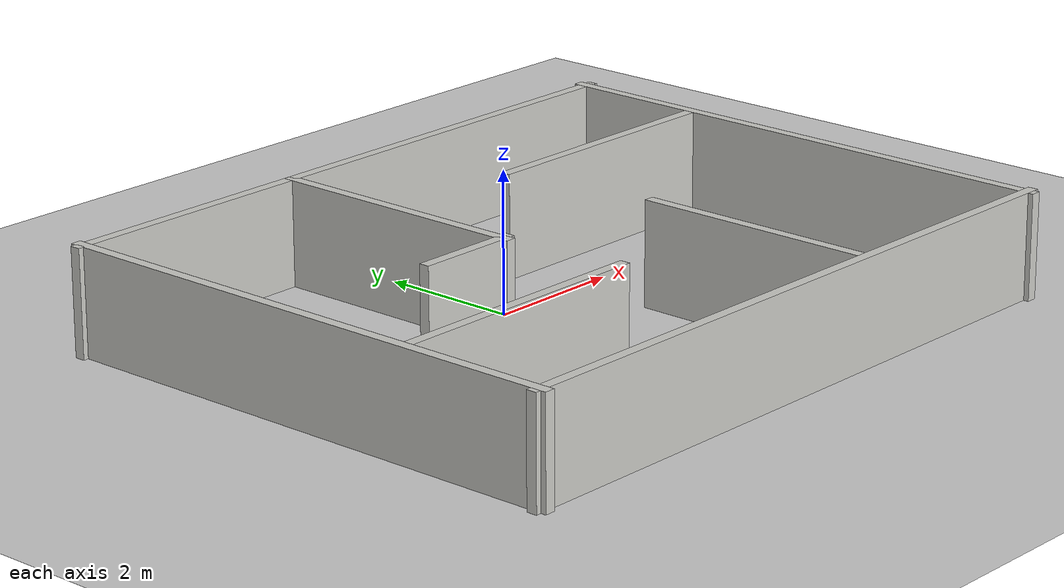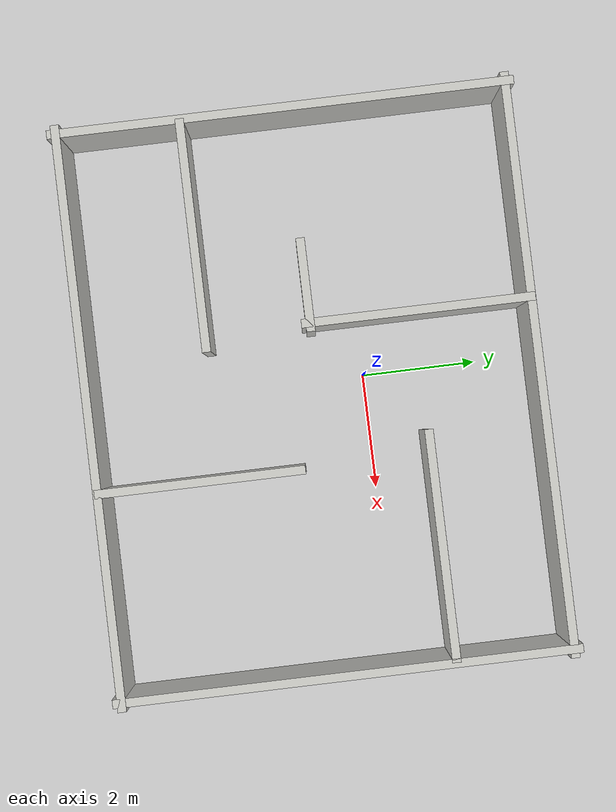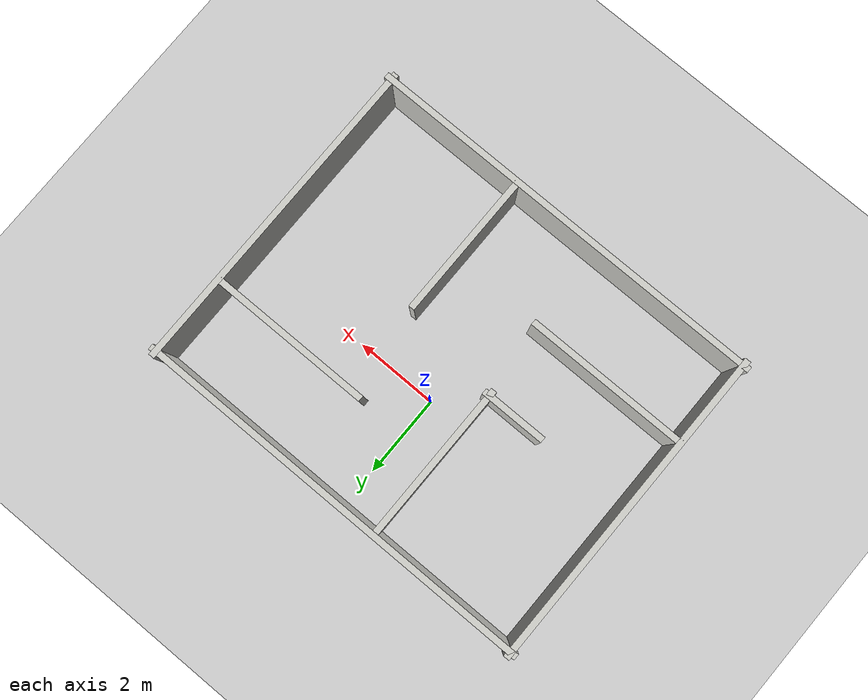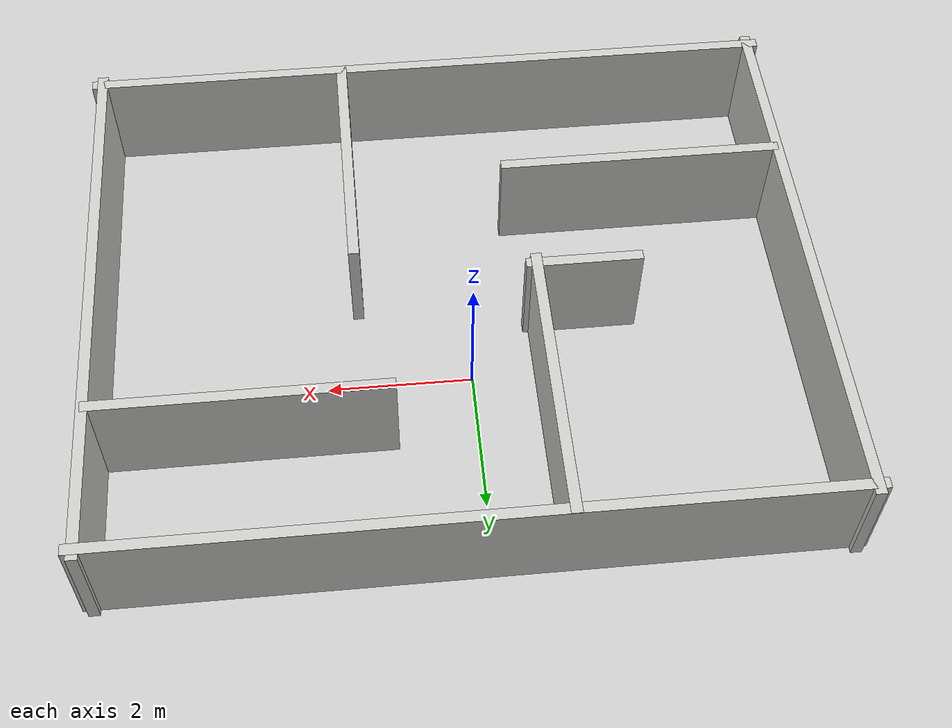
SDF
<sdf version="1.7">
 <world name="default">
  <light name="sun" type="directional">
   <pose>0 0 10 0 -0 0</pose>
   <diffuse>0.8 0.8 0.8 1</diffuse>
   <specular>0.2 0.2 0.2 1</specular>
   <attenuation>
    <range>1000</range>
    <constant>0.9</constant>
    <linear>0.01</linear>
    <quadratic>0.001</quadratic>
   </attenuation>
   <direction>-0.5 0.1 -0.9</direction>
   <spot><inner_angle>0</inner_angle><outer_angle>0</outer_angle><falloff>0</falloff></spot>
  </light>
  <model name="ground_plane">
   <static>1</static>
   <link name="link">
    <collision name="collision">
     <geometry><plane><normal>0 0 1</normal><size>100 100</size></plane></geometry>
     <surface>
      <contact><collide_bitmask>65535</collide_bitmask></contact>
      <friction><ode><mu>100</mu><mu2>50</mu2></ode></friction>
     </surface>
    </collision>
    <visual name="visual">
     <cast_shadows>0</cast_shadows>
     <geometry><plane><normal>0 0 1</normal><size>100 100</size></plane></geometry>
     <material>
      <script><uri>file://media/materials/scripts/gazebo.material</uri><name>Gazebo/Grey</name></script>
     </material>
    </visual>
   </link>
  </model>
  <gravity>0 0 -9.8</gravity>
  <magnetic_field>6e-06 2.3e-05 -4.2e-05</magnetic_field>
  <atmosphere type="adiabatic"/>
  <physics type="ode">
   <max_step_size>0.001</max_step_size>
   <real_time_factor>1</real_time_factor>
   <real_time_update_rate>1000</real_time_update_rate>
  </physics>
  <scene><ambient>0.4 0.4 0.4 1</ambient><background>0.7 0.7 0.7 1</background><shadows>1</shadows></scene>
  <spherical_coordinates>
   <surface_model>EARTH_WGS84</surface_model>
   <latitude_deg>0</latitude_deg>
   <longitude_deg>0</longitude_deg>
   <elevation>0</elevation>
   <heading_deg>0</heading_deg>
  </spherical_coordinates>
  <model name="bnt_partition1">
   <pose>0.200898 -0.36337 0 0 -0 0</pose>
   <link name="Wall_1">
    <collision name="Wall_1_Collision">
     <geometry><box><size>8 0.15 1.5</size></box></geometry>
     <pose>0 0 0.75 0 -0 0</pose>
    </collision>
    <visual name="Wall_1_Visual">
     <pose>0 0 0.75 0 -0 0</pose>
     <geometry><box><size>8 0.15 1.5</size></box></geometry>
     <material>
      <script><uri>file://media/materials/scripts/gazebo.material</uri><name>Gazebo/CeilingTiled</name></script>
      <ambient>1 1 1 1</ambient>
     </material>
     <meta><layer>0</layer></meta>
    </visual>
    <pose>-4.85 -0.535 0 0 -0 -1.5708</pose>
   </link>
   <link name="Wall_11">
    <collision name="Wall_11_Collision">
     <geometry><box><size>4 0.15 1.5</size></box></geometry>
     <pose>0 0 0.75 0 -0 0</pose>
    </collision>
    <visual name="Wall_11_Visual">
     <pose>0 0 0.75 0 -0 0</pose>
     <geometry><box><size>4 0.15 1.5</size></box></geometry>
     <material>
      <script><uri>file://media/materials/scripts/gazebo.material</uri><name>Gazebo/CeilingTiled</name></script>
      <ambient>1 1 1 1</ambient>
     </material>
     <meta><layer>0</layer></meta>
    </visual>
    <pose>-2.86 -2.265 0 0 -0 0</pose>
   </link>
   <link name="Wall_13">
    <collision name="Wall_13_Collision">
     <geometry><box><size>4 0.15 1.5</size></box></geometry>
     <pose>0 0 0.75 0 -0 0</pose>
    </collision>
    <visual name="Wall_13_Visual">
     <pose>0 0 0.75 0 -0 0</pose>
     <geometry><box><size>4 0.15 1.5</size></box></geometry>
     <material>
      <script><uri>file://media/materials/scripts/gazebo.material</uri><name>Gazebo/CeilingTiled</name></script>
      <ambient>1 1 1 1</ambient>
     </material>
     <meta><layer>0</layer></meta>
    </visual>
    <pose>-1.15 1.385 0 0 -0 -1.5708</pose>
   </link>
   <link name="Wall_15">
    <collision name="Wall_15_Collision">
     <geometry><box><size>1.6 0.15 1.5</size></box></geometry>
     <pose>0 0 0.75 0 -0 0</pose>
    </collision>
    <visual name="Wall_15_Visual">
     <pose>0 0 0.75 0 -0 0</pose>
     <geometry><box><size>1.6 0.15 1.5</size></box></geometry>
     <material>
      <script><uri>file://media/materials/scripts/gazebo.material</uri><name>Gazebo/CeilingTiled</name></script>
      <ambient>1 1 1 1</ambient>
     </material>
     <meta><layer>0</layer></meta>
    </visual>
    <pose>-1.8 -0.465 0 0 -0 3.14159</pose>
   </link>
   <link name="Wall_17">
    <collision name="Wall_17_Collision">
     <geometry><box><size>4 0.15 1.5</size></box></geometry>
     <pose>0 0 0.75 0 -0 0</pose>
    </collision>
    <visual name="Wall_17_Visual">
     <pose>0 0 0.75 0 -0 0</pose>
     <geometry><box><size>4 0.15 1.5</size></box></geometry>
     <material>
      <script><uri>file://media/materials/scripts/gazebo.material</uri><name>Gazebo/CeilingTiled</name></script>
      <ambient>1 1 1 1</ambient>
     </material>
     <meta><layer>0</layer></meta>
    </visual>
    <pose>2.88 1.315 0 0 -0 3.14159</pose>
   </link>
   <link name="Wall_19">
    <collision name="Wall_19_Collision">
     <geometry><box><size>3.6 0.15 1.5</size></box></geometry>
     <pose>0 0 0.75 0 -0 0</pose>
    </collision>
    <visual name="Wall_19_Visual">
     <pose>0 0 0.75 0 -0 0</pose>
     <geometry><box><size>3.6 0.15 1.5</size></box></geometry>
     <material>
      <script><uri>file://media/materials/scripts/gazebo.material</uri><name>Gazebo/CeilingTiled</name></script>
      <ambient>1 1 1 1</ambient>
     </material>
     <meta><layer>0</layer></meta>
    </visual>
    <pose>1.31 -2.635 0 0 -0 1.5708</pose>
   </link>
   <link name="Wall_3">
    <collision name="Wall_3_Collision">
     <geometry><box><size>10 0.15 1.5</size></box></geometry>
     <pose>0 0 0.75 0 -0 0</pose>
    </collision>
    <visual name="Wall_3_Visual">
     <pose>0 0 0.75 0 -0 0</pose>
     <geometry><box><size>10 0.15 1.5</size></box></geometry>
     <material>
      <script><uri>file://media/materials/scripts/gazebo.material</uri><name>Gazebo/CeilingTiled</name></script>
      <ambient>1 1 1 1</ambient>
     </material>
     <meta><layer>0</layer></meta>
    </visual>
    <pose>-0 -4.385 0 0 -0 0</pose>
   </link>
   <link name="Wall_7">
    <collision name="Wall_7_Collision">
     <geometry><box><size>8 0.15 1.5</size></box></geometry>
     <pose>0 0 0.75 0 -0 0</pose>
    </collision>
    <visual name="Wall_7_Visual">
     <pose>0 0 0.75 0 -0 0</pose>
     <geometry><box><size>8 0.15 1.5</size></box></geometry>
     <material>
      <script><uri>file://media/materials/scripts/gazebo.material</uri><name>Gazebo/CeilingTiled</name></script>
      <ambient>1 1 1 1</ambient>
     </material>
     <meta><layer>0</layer></meta>
    </visual>
    <pose>4.85 -0.535 0 0 -0 1.5708</pose>
   </link>
   <link name="Wall_9">
    <collision name="Wall_9_Collision">
     <geometry><box><size>10 0.15 1.5</size></box></geometry>
     <pose>0 0 0.75 0 -0 0</pose>
    </collision>
    <visual name="Wall_9_Visual">
     <pose>0 0 0.75 0 -0 0</pose>
     <geometry><box><size>10 0.15 1.5</size></box></geometry>
     <material>
      <script><uri>file://media/materials/scripts/gazebo.material</uri><name>Gazebo/CeilingTiled</name></script>
      <ambient>1 1 1 1</ambient>
     </material>
     <meta><layer>0</layer></meta>
    </visual>
    <pose>-0 3.315 0 0 -0 0</pose>
   </link>
   <static>1</static>
  </model>
 </world>
</sdf>
